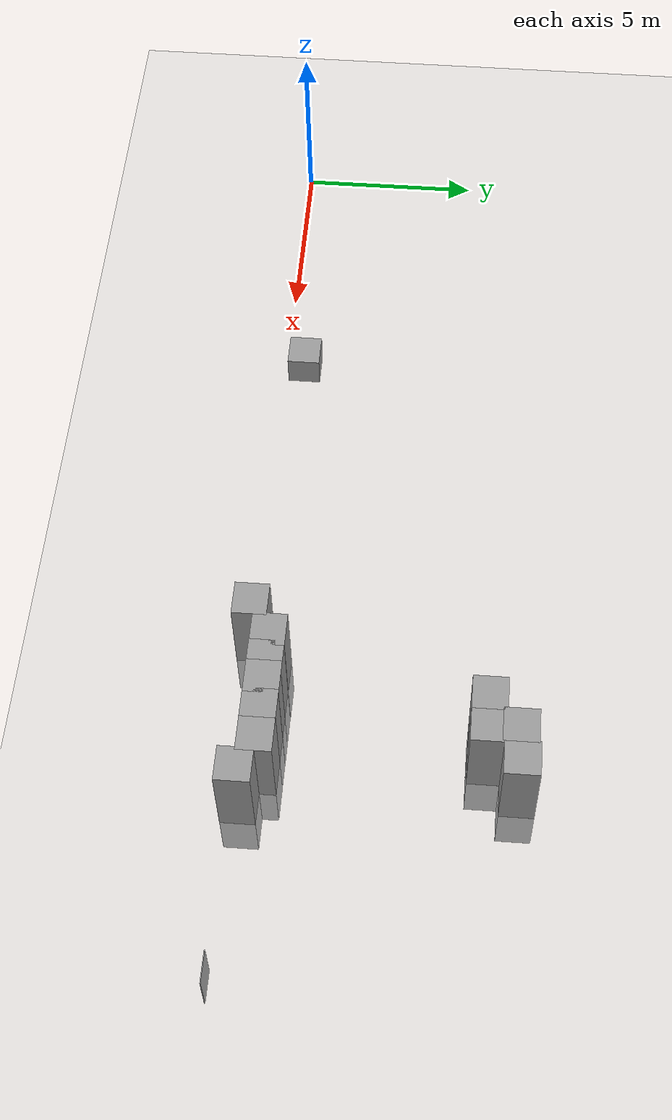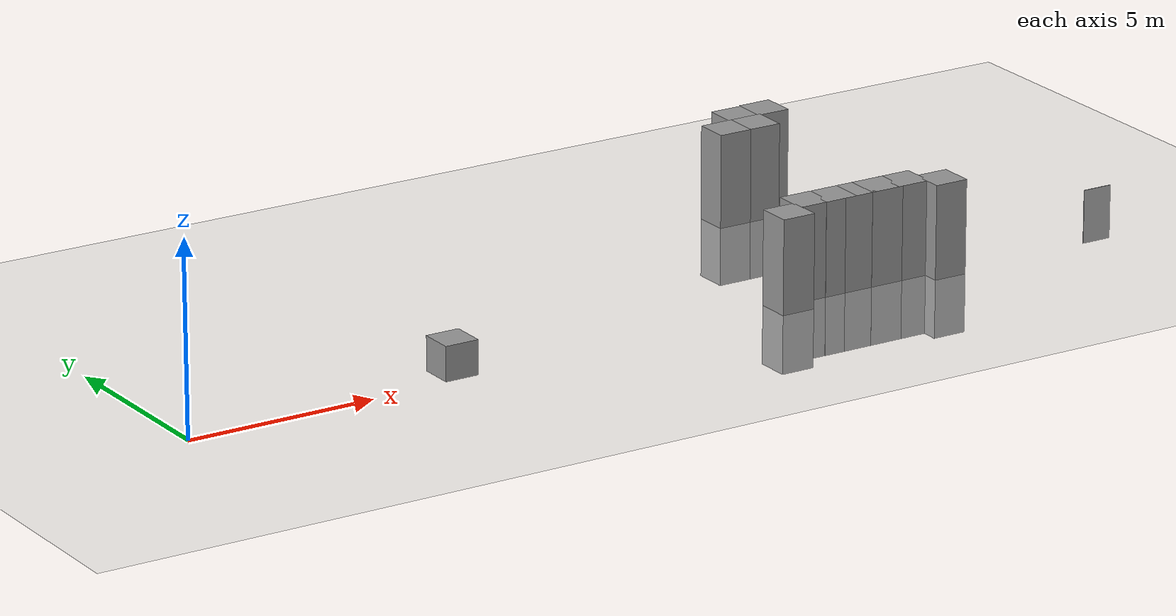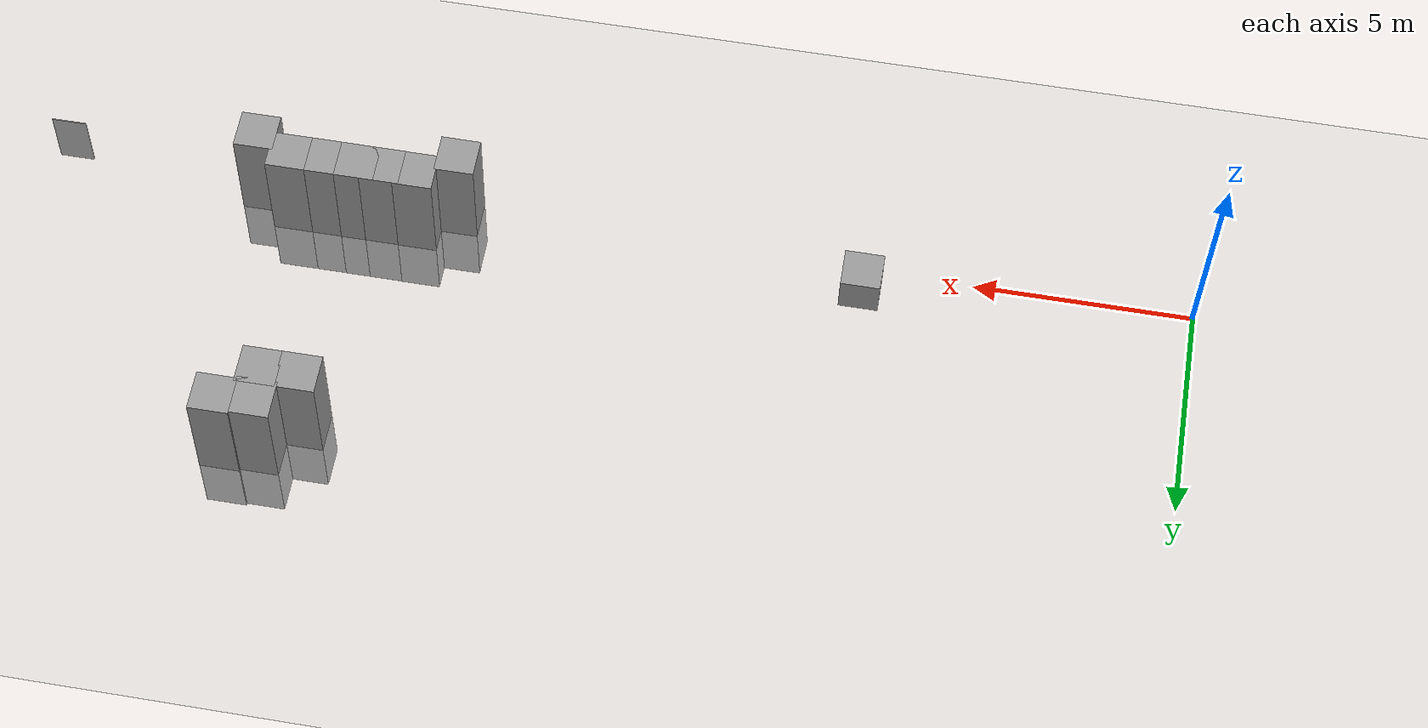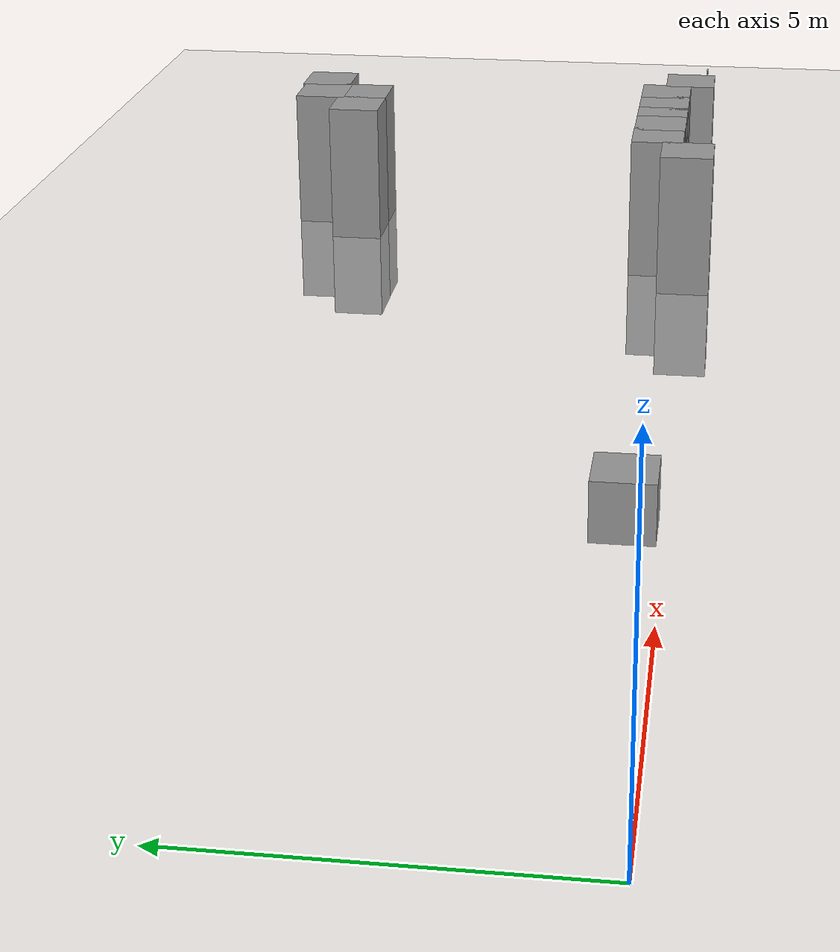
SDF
<sdf version="1.7">
 <world name="default">
  <model name="ground_plane">
   <static>1</static>
   <link name="link">
    <collision name="collision">
     <geometry><plane><normal>0 0 1</normal><size>100 100</size></plane></geometry>
     <surface><friction><ode><mu>100</mu><mu2>50</mu2></ode></friction></surface>
    </collision>
    <visual name="visual">
     <cast_shadows>0</cast_shadows>
     <geometry><plane><normal>0 0 1</normal><size>100 100</size></plane></geometry>
     <material>
      <script><uri>file://media/materials/scripts/gazebo.material</uri><name>Gazebo/Grey</name></script>
     </material>
    </visual>
   </link>
  </model>
  <model name="unit_box_1_clone_0_clone_clone">
   <link name="link">
    <inertial>
     <mass>1</mass>
     <inertia>
      <ixx>0.166667</ixx>
      <ixy>0</ixy>
      <ixz>0</ixz>
      <iyy>0.166667</iyy>
      <iyz>0</iyz>
      <izz>0.166667</izz>
     </inertia>
    </inertial>
    <visual name="visual">
     <geometry><box><size>0.02 0.8 1.4</size></box></geometry>
     <material>
      <script><name>Gazebo/LingXi</name><uri>file://media/materials/scripts/gazebo.material</uri></script>
      <shader type="pixel"><normal_map>__default__</normal_map></shader>
      <ambient>1 1 1 1</ambient>
      <diffuse>0.7 0.7 0.7 1</diffuse>
      <specular>0.01 0.01 0.01 1</specular>
      <emissive>0 0 0 1</emissive>
     </material>
     <pose>0 0 0 0 -0 1.5707</pose>
    </visual>
    <collision name="collision">
     <pose>0 0 0 0 -0 1.5707</pose>
     <geometry><box><size>0.02 0.8 1.4</size></box></geometry>
     <surface>
      <friction>
       <ode><mu>1</mu><mu2>1</mu2><fdir1>0 0 0</fdir1><slip1>0</slip1><slip2>0</slip2></ode>
       <torsional>
        <coefficient>1</coefficient>
        <patch_radius>0</patch_radius>
        <surface_radius>0</surface_radius>
        <use_patch_radius>1</use_patch_radius>
        <ode><slip>0</slip></ode>
       </torsional>
      </friction>
      <bounce><restitution_coefficient>0</restitution_coefficient><threshold>1e+06</threshold></bounce>
      <contact>
       <collide_without_contact>0</collide_without_contact>
       <collide_without_contact_bitmask>1</collide_without_contact_bitmask>
       <collide_bitmask>1</collide_bitmask>
       <ode>
        <soft_cfm>0</soft_cfm>
        <soft_erp>0.2</soft_erp>
        <kp>1e+13</kp>
        <kd>1</kd>
        <max_vel>0.01</max_vel>
        <min_depth>0</min_depth>
       </ode>
       <bullet>
        <split_impulse>1</split_impulse>
        <split_impulse_penetration_threshold>-0.01</split_impulse_penetration_threshold>
        <soft_cfm>0</soft_cfm>
        <soft_erp>0.2</soft_erp>
        <kp>1e+13</kp>
        <kd>1</kd>
       </bullet>
      </contact>
     </surface>
    </collision>
   </link>
   <static>0</static>
   <pose>26.036 -0.003555 0.700002 -0.000398 -4e-06 5.6e-05</pose>
  </model>
  <model name="unit_box">
   <link name="link_clone_0_clone_clone_3_clone_2_clone_23">
    <inertial>
     <mass>1</mass>
     <inertia>
      <ixx>0.166667</ixx>
      <ixy>0</ixy>
      <ixz>0</ixz>
      <iyy>0.166667</iyy>
      <iyz>0</iyz>
      <izz>0.166667</izz>
     </inertia>
    </inertial>
    <pose>13.9151 1.72247 0 0 -0 0</pose>
    <visual name="visual">
     <geometry><box><size>0.9 0.9 4</size></box></geometry>
     <material>
      <script><name>Gazebo/Grey</name><uri>file://media/materials/scripts/gazebo.material</uri></script>
      <shader type="pixel"><normal_map>__default__</normal_map></shader>
      <ambient>0.3 0.3 0.3 1</ambient>
      <diffuse>0.7 0.7 0.7 1</diffuse>
      <specular>0.01 0.01 0.01 1</specular>
      <emissive>0 0 0 1</emissive>
     </material>
    </visual>
    <collision name="collision">
     <geometry><box><size>0.9 0.9 4</size></box></geometry>
     <surface>
      <friction>
       <ode><mu>1</mu><mu2>1</mu2><fdir1>0 0 0</fdir1><slip1>0</slip1><slip2>0</slip2></ode>
       <torsional>
        <coefficient>1</coefficient>
        <patch_radius>0</patch_radius>
        <surface_radius>0</surface_radius>
        <use_patch_radius>1</use_patch_radius>
        <ode><slip>0</slip></ode>
       </torsional>
      </friction>
      <bounce><restitution_coefficient>0</restitution_coefficient><threshold>1e+06</threshold></bounce>
      <contact>
       <collide_without_contact>0</collide_without_contact>
       <collide_without_contact_bitmask>1</collide_without_contact_bitmask>
       <collide_bitmask>1</collide_bitmask>
       <ode>
        <soft_cfm>0</soft_cfm>
        <soft_erp>0.2</soft_erp>
        <kp>1e+13</kp>
        <kd>1</kd>
        <max_vel>0.01</max_vel>
        <min_depth>0</min_depth>
       </ode>
       <bullet>
        <split_impulse>1</split_impulse>
        <split_impulse_penetration_threshold>-0.01</split_impulse_penetration_threshold>
        <soft_cfm>0</soft_cfm>
        <soft_erp>0.2</soft_erp>
        <kp>1e+13</kp>
        <kd>1</kd>
       </bullet>
      </contact>
     </surface>
    </collision>
   </link>
   <link name="link_clone_0_clone_clone_3_clone_2_clone_24">
    <inertial>
     <mass>1</mass>
     <inertia>
      <ixx>0.166667</ixx>
      <ixy>0</ixy>
      <ixz>0</ixz>
      <iyy>0.166667</iyy>
      <iyz>0</iyz>
      <izz>0.166667</izz>
     </inertia>
    </inertial>
    <pose>13.0875 2.15167 0 0 -0 0</pose>
    <visual name="visual">
     <geometry><box><size>0.9 0.9 4</size></box></geometry>
     <material>
      <script><name>Gazebo/Grey</name><uri>file://media/materials/scripts/gazebo.material</uri></script>
      <shader type="pixel"><normal_map>__default__</normal_map></shader>
      <ambient>0.3 0.3 0.3 1</ambient>
      <diffuse>0.7 0.7 0.7 1</diffuse>
      <specular>0.01 0.01 0.01 1</specular>
      <emissive>0 0 0 1</emissive>
     </material>
    </visual>
    <collision name="collision">
     <geometry><box><size>0.9 0.9 4</size></box></geometry>
     <surface>
      <friction>
       <ode><mu>1</mu><mu2>1</mu2><fdir1>0 0 0</fdir1><slip1>0</slip1><slip2>0</slip2></ode>
       <torsional>
        <coefficient>1</coefficient>
        <patch_radius>0</patch_radius>
        <surface_radius>0</surface_radius>
        <use_patch_radius>1</use_patch_radius>
        <ode><slip>0</slip></ode>
       </torsional>
      </friction>
      <bounce><restitution_coefficient>0</restitution_coefficient><threshold>1e+06</threshold></bounce>
      <contact>
       <collide_without_contact>0</collide_without_contact>
       <collide_without_contact_bitmask>1</collide_without_contact_bitmask>
       <collide_bitmask>1</collide_bitmask>
       <ode>
        <soft_cfm>0</soft_cfm>
        <soft_erp>0.2</soft_erp>
        <kp>1e+13</kp>
        <kd>1</kd>
        <max_vel>0.01</max_vel>
        <min_depth>0</min_depth>
       </ode>
       <bullet>
        <split_impulse>1</split_impulse>
        <split_impulse_penetration_threshold>-0.01</split_impulse_penetration_threshold>
        <soft_cfm>0</soft_cfm>
        <soft_erp>0.2</soft_erp>
        <kp>1e+13</kp>
        <kd>1</kd>
       </bullet>
      </contact>
     </surface>
    </collision>
   </link>
   <link name="link_clone_0_clone_clone_3_clone_2_clone_25">
    <inertial>
     <mass>1</mass>
     <inertia>
      <ixx>0.166667</ixx>
      <ixy>0</ixy>
      <ixz>0</ixz>
      <iyy>0.166667</iyy>
      <iyz>0</iyz>
      <izz>0.166667</izz>
     </inertia>
    </inertial>
    <pose>12.303 2.15067 0 0 -0 0</pose>
    <visual name="visual">
     <geometry><box><size>0.9 0.9 4</size></box></geometry>
     <material>
      <script><name>Gazebo/Grey</name><uri>file://media/materials/scripts/gazebo.material</uri></script>
      <shader type="pixel"><normal_map>__default__</normal_map></shader>
      <ambient>0.3 0.3 0.3 1</ambient>
      <diffuse>0.7 0.7 0.7 1</diffuse>
      <specular>0.01 0.01 0.01 1</specular>
      <emissive>0 0 0 1</emissive>
     </material>
    </visual>
    <collision name="collision">
     <geometry><box><size>0.9 0.9 4</size></box></geometry>
     <surface>
      <friction>
       <ode><mu>1</mu><mu2>1</mu2><fdir1>0 0 0</fdir1><slip1>0</slip1><slip2>0</slip2></ode>
       <torsional>
        <coefficient>1</coefficient>
        <patch_radius>0</patch_radius>
        <surface_radius>0</surface_radius>
        <use_patch_radius>1</use_patch_radius>
        <ode><slip>0</slip></ode>
       </torsional>
      </friction>
      <bounce><restitution_coefficient>0</restitution_coefficient><threshold>1e+06</threshold></bounce>
      <contact>
       <collide_without_contact>0</collide_without_contact>
       <collide_without_contact_bitmask>1</collide_without_contact_bitmask>
       <collide_bitmask>1</collide_bitmask>
       <ode>
        <soft_cfm>0</soft_cfm>
        <soft_erp>0.2</soft_erp>
        <kp>1e+13</kp>
        <kd>1</kd>
        <max_vel>0.01</max_vel>
        <min_depth>0</min_depth>
       </ode>
       <bullet>
        <split_impulse>1</split_impulse>
        <split_impulse_penetration_threshold>-0.01</split_impulse_penetration_threshold>
        <soft_cfm>0</soft_cfm>
        <soft_erp>0.2</soft_erp>
        <kp>1e+13</kp>
        <kd>1</kd>
       </bullet>
      </contact>
     </surface>
    </collision>
   </link>
   <link name="link_clone_0_clone_clone_3_clone_2_clone_26">
    <inertial>
     <mass>1</mass>
     <inertia>
      <ixx>0.166667</ixx>
      <ixy>0</ixy>
      <ixz>0</ixz>
      <iyy>0.166667</iyy>
      <iyz>0</iyz>
      <izz>0.166667</izz>
     </inertia>
    </inertial>
    <pose>11.5113 2.15271 0 0 -0 0</pose>
    <visual name="visual">
     <geometry><box><size>0.9 0.9 4</size></box></geometry>
     <material>
      <script><name>Gazebo/Grey</name><uri>file://media/materials/scripts/gazebo.material</uri></script>
      <shader type="pixel"><normal_map>__default__</normal_map></shader>
      <ambient>0.3 0.3 0.3 1</ambient>
      <diffuse>0.7 0.7 0.7 1</diffuse>
      <specular>0.01 0.01 0.01 1</specular>
      <emissive>0 0 0 1</emissive>
     </material>
    </visual>
    <collision name="collision">
     <geometry><box><size>0.9 0.9 4</size></box></geometry>
     <surface>
      <friction>
       <ode><mu>1</mu><mu2>1</mu2><fdir1>0 0 0</fdir1><slip1>0</slip1><slip2>0</slip2></ode>
       <torsional>
        <coefficient>1</coefficient>
        <patch_radius>0</patch_radius>
        <surface_radius>0</surface_radius>
        <use_patch_radius>1</use_patch_radius>
        <ode><slip>0</slip></ode>
       </torsional>
      </friction>
      <bounce><restitution_coefficient>0</restitution_coefficient><threshold>1e+06</threshold></bounce>
      <contact>
       <collide_without_contact>0</collide_without_contact>
       <collide_without_contact_bitmask>1</collide_without_contact_bitmask>
       <collide_bitmask>1</collide_bitmask>
       <ode>
        <soft_cfm>0</soft_cfm>
        <soft_erp>0.2</soft_erp>
        <kp>1e+13</kp>
        <kd>1</kd>
        <max_vel>0.01</max_vel>
        <min_depth>0</min_depth>
       </ode>
       <bullet>
        <split_impulse>1</split_impulse>
        <split_impulse_penetration_threshold>-0.01</split_impulse_penetration_threshold>
        <soft_cfm>0</soft_cfm>
        <soft_erp>0.2</soft_erp>
        <kp>1e+13</kp>
        <kd>1</kd>
       </bullet>
      </contact>
     </surface>
    </collision>
   </link>
   <link name="link_clone_0_clone_clone_3_clone_2_clone_27">
    <inertial>
     <mass>1</mass>
     <inertia>
      <ixx>0.166667</ixx>
      <ixy>0</ixy>
      <ixz>0</ixz>
      <iyy>0.166667</iyy>
      <iyz>0</iyz>
      <izz>0.166667</izz>
     </inertia>
    </inertial>
    <pose>10.9377 2.1528 0 0 -0 0</pose>
    <visual name="visual">
     <geometry><box><size>0.9 0.9 4</size></box></geometry>
     <material>
      <script><name>Gazebo/Grey</name><uri>file://media/materials/scripts/gazebo.material</uri></script>
      <shader type="pixel"><normal_map>__default__</normal_map></shader>
      <ambient>0.3 0.3 0.3 1</ambient>
      <diffuse>0.7 0.7 0.7 1</diffuse>
      <specular>0.01 0.01 0.01 1</specular>
      <emissive>0 0 0 1</emissive>
     </material>
    </visual>
    <collision name="collision">
     <geometry><box><size>0.9 0.9 4</size></box></geometry>
     <surface>
      <friction>
       <ode><mu>1</mu><mu2>1</mu2><fdir1>0 0 0</fdir1><slip1>0</slip1><slip2>0</slip2></ode>
       <torsional>
        <coefficient>1</coefficient>
        <patch_radius>0</patch_radius>
        <surface_radius>0</surface_radius>
        <use_patch_radius>1</use_patch_radius>
        <ode><slip>0</slip></ode>
       </torsional>
      </friction>
      <bounce><restitution_coefficient>0</restitution_coefficient><threshold>1e+06</threshold></bounce>
      <contact>
       <collide_without_contact>0</collide_without_contact>
       <collide_without_contact_bitmask>1</collide_without_contact_bitmask>
       <collide_bitmask>1</collide_bitmask>
       <ode>
        <soft_cfm>0</soft_cfm>
        <soft_erp>0.2</soft_erp>
        <kp>1e+13</kp>
        <kd>1</kd>
        <max_vel>0.01</max_vel>
        <min_depth>0</min_depth>
       </ode>
       <bullet>
        <split_impulse>1</split_impulse>
        <split_impulse_penetration_threshold>-0.01</split_impulse_penetration_threshold>
        <soft_cfm>0</soft_cfm>
        <soft_erp>0.2</soft_erp>
        <kp>1e+13</kp>
        <kd>1</kd>
       </bullet>
      </contact>
     </surface>
    </collision>
   </link>
   <link name="link_clone_0_clone_clone_3_clone_2_clone_28">
    <inertial>
     <mass>1</mass>
     <inertia>
      <ixx>0.166667</ixx>
      <ixy>0</ixy>
      <ixz>0</ixz>
      <iyy>0.166667</iyy>
      <iyz>0</iyz>
      <izz>0.166667</izz>
     </inertia>
    </inertial>
    <pose>10.1752 2.15883 0 0 -0 0</pose>
    <visual name="visual">
     <geometry><box><size>0.9 0.9 4</size></box></geometry>
     <material>
      <script><name>Gazebo/Grey</name><uri>file://media/materials/scripts/gazebo.material</uri></script>
      <shader type="pixel"><normal_map>__default__</normal_map></shader>
      <ambient>0.3 0.3 0.3 1</ambient>
      <diffuse>0.7 0.7 0.7 1</diffuse>
      <specular>0.01 0.01 0.01 1</specular>
      <emissive>0 0 0 1</emissive>
     </material>
    </visual>
    <collision name="collision">
     <geometry><box><size>0.9 0.9 4</size></box></geometry>
     <surface>
      <friction>
       <ode><mu>1</mu><mu2>1</mu2><fdir1>0 0 0</fdir1><slip1>0</slip1><slip2>0</slip2></ode>
       <torsional>
        <coefficient>1</coefficient>
        <patch_radius>0</patch_radius>
        <surface_radius>0</surface_radius>
        <use_patch_radius>1</use_patch_radius>
        <ode><slip>0</slip></ode>
       </torsional>
      </friction>
      <bounce><restitution_coefficient>0</restitution_coefficient><threshold>1e+06</threshold></bounce>
      <contact>
       <collide_without_contact>0</collide_without_contact>
       <collide_without_contact_bitmask>1</collide_without_contact_bitmask>
       <collide_bitmask>1</collide_bitmask>
       <ode>
        <soft_cfm>0</soft_cfm>
        <soft_erp>0.2</soft_erp>
        <kp>1e+13</kp>
        <kd>1</kd>
        <max_vel>0.01</max_vel>
        <min_depth>0</min_depth>
       </ode>
       <bullet>
        <split_impulse>1</split_impulse>
        <split_impulse_penetration_threshold>-0.01</split_impulse_penetration_threshold>
        <soft_cfm>0</soft_cfm>
        <soft_erp>0.2</soft_erp>
        <kp>1e+13</kp>
        <kd>1</kd>
       </bullet>
      </contact>
     </surface>
    </collision>
   </link>
   <link name="link_clone_0_clone_clone_3_clone_2_clone_29">
    <inertial>
     <mass>1</mass>
     <inertia>
      <ixx>0.166667</ixx>
      <ixy>0</ixy>
      <ixz>0</ixz>
      <iyy>0.166667</iyy>
      <iyz>0</iyz>
      <izz>0.166667</izz>
     </inertia>
    </inertial>
    <pose>9.32821 1.61569 0 0 -0 0</pose>
    <visual name="visual">
     <geometry><box><size>0.9 0.9 4</size></box></geometry>
     <material>
      <script><name>Gazebo/Grey</name><uri>file://media/materials/scripts/gazebo.material</uri></script>
      <shader type="pixel"><normal_map>__default__</normal_map></shader>
      <ambient>0.3 0.3 0.3 1</ambient>
      <diffuse>0.7 0.7 0.7 1</diffuse>
      <specular>0.01 0.01 0.01 1</specular>
      <emissive>0 0 0 1</emissive>
     </material>
    </visual>
    <collision name="collision">
     <geometry><box><size>0.9 0.9 4</size></box></geometry>
     <surface>
      <friction>
       <ode><mu>1</mu><mu2>1</mu2><fdir1>0 0 0</fdir1><slip1>0</slip1><slip2>0</slip2></ode>
       <torsional>
        <coefficient>1</coefficient>
        <patch_radius>0</patch_radius>
        <surface_radius>0</surface_radius>
        <use_patch_radius>1</use_patch_radius>
        <ode><slip>0</slip></ode>
       </torsional>
      </friction>
      <bounce><restitution_coefficient>0</restitution_coefficient><threshold>1e+06</threshold></bounce>
      <contact>
       <collide_without_contact>0</collide_without_contact>
       <collide_without_contact_bitmask>1</collide_without_contact_bitmask>
       <collide_bitmask>1</collide_bitmask>
       <ode>
        <soft_cfm>0</soft_cfm>
        <soft_erp>0.2</soft_erp>
        <kp>1e+13</kp>
        <kd>1</kd>
        <max_vel>0.01</max_vel>
        <min_depth>0</min_depth>
       </ode>
       <bullet>
        <split_impulse>1</split_impulse>
        <split_impulse_penetration_threshold>-0.01</split_impulse_penetration_threshold>
        <soft_cfm>0</soft_cfm>
        <soft_erp>0.2</soft_erp>
        <kp>1e+13</kp>
        <kd>1</kd>
       </bullet>
      </contact>
     </surface>
    </collision>
   </link>
   <link name="link_clone_0_clone_clone_3_clone_2_clone_33">
    <inertial>
     <mass>1</mass>
     <inertia>
      <ixx>0.166667</ixx>
      <ixy>0</ixy>
      <ixz>0</ixz>
      <iyy>0.166667</iyy>
      <iyz>0</iyz>
      <izz>0.166667</izz>
     </inertia>
    </inertial>
    <pose>11.5534 7.77866 0 0 -0 0</pose>
    <visual name="visual">
     <geometry><box><size>0.9 0.9 4</size></box></geometry>
     <material>
      <script><name>Gazebo/Grey</name><uri>file://media/materials/scripts/gazebo.material</uri></script>
      <shader type="pixel"><normal_map>__default__</normal_map></shader>
      <ambient>0.3 0.3 0.3 1</ambient>
      <diffuse>0.7 0.7 0.7 1</diffuse>
      <specular>0.01 0.01 0.01 1</specular>
      <emissive>0 0 0 1</emissive>
     </material>
    </visual>
    <collision name="collision">
     <geometry><box><size>0.9 0.9 4</size></box></geometry>
     <surface>
      <friction>
       <ode><mu>1</mu><mu2>1</mu2><fdir1>0 0 0</fdir1><slip1>0</slip1><slip2>0</slip2></ode>
       <torsional>
        <coefficient>1</coefficient>
        <patch_radius>0</patch_radius>
        <surface_radius>0</surface_radius>
        <use_patch_radius>1</use_patch_radius>
        <ode><slip>0</slip></ode>
       </torsional>
      </friction>
      <bounce><restitution_coefficient>0</restitution_coefficient><threshold>1e+06</threshold></bounce>
      <contact>
       <collide_without_contact>0</collide_without_contact>
       <collide_without_contact_bitmask>1</collide_without_contact_bitmask>
       <collide_bitmask>1</collide_bitmask>
       <ode>
        <soft_cfm>0</soft_cfm>
        <soft_erp>0.2</soft_erp>
        <kp>1e+13</kp>
        <kd>1</kd>
        <max_vel>0.01</max_vel>
        <min_depth>0</min_depth>
       </ode>
       <bullet>
        <split_impulse>1</split_impulse>
        <split_impulse_penetration_threshold>-0.01</split_impulse_penetration_threshold>
        <soft_cfm>0</soft_cfm>
        <soft_erp>0.2</soft_erp>
        <kp>1e+13</kp>
        <kd>1</kd>
       </bullet>
      </contact>
     </surface>
    </collision>
   </link>
   <link name="link_clone_0_clone_clone_3_clone_2_clone_34">
    <inertial>
     <mass>1</mass>
     <inertia>
      <ixx>0.166667</ixx>
      <ixy>0</ixy>
      <ixz>0</ixz>
      <iyy>0.166667</iyy>
      <iyz>0</iyz>
      <izz>0.166667</izz>
     </inertia>
    </inertial>
    <pose>12.4188 7.78202 0 0 -0 0</pose>
    <visual name="visual">
     <geometry><box><size>0.9 0.9 4</size></box></geometry>
     <material>
      <script><name>Gazebo/Grey</name><uri>file://media/materials/scripts/gazebo.material</uri></script>
      <shader type="pixel"><normal_map>__default__</normal_map></shader>
      <ambient>0.3 0.3 0.3 1</ambient>
      <diffuse>0.7 0.7 0.7 1</diffuse>
      <specular>0.01 0.01 0.01 1</specular>
      <emissive>0 0 0 1</emissive>
     </material>
    </visual>
    <collision name="collision">
     <geometry><box><size>0.9 0.9 4</size></box></geometry>
     <surface>
      <friction>
       <ode><mu>1</mu><mu2>1</mu2><fdir1>0 0 0</fdir1><slip1>0</slip1><slip2>0</slip2></ode>
       <torsional>
        <coefficient>1</coefficient>
        <patch_radius>0</patch_radius>
        <surface_radius>0</surface_radius>
        <use_patch_radius>1</use_patch_radius>
        <ode><slip>0</slip></ode>
       </torsional>
      </friction>
      <bounce><restitution_coefficient>0</restitution_coefficient><threshold>1e+06</threshold></bounce>
      <contact>
       <collide_without_contact>0</collide_without_contact>
       <collide_without_contact_bitmask>1</collide_without_contact_bitmask>
       <collide_bitmask>1</collide_bitmask>
       <ode>
        <soft_cfm>0</soft_cfm>
        <soft_erp>0.2</soft_erp>
        <kp>1e+13</kp>
        <kd>1</kd>
        <max_vel>0.01</max_vel>
        <min_depth>0</min_depth>
       </ode>
       <bullet>
        <split_impulse>1</split_impulse>
        <split_impulse_penetration_threshold>-0.01</split_impulse_penetration_threshold>
        <soft_cfm>0</soft_cfm>
        <soft_erp>0.2</soft_erp>
        <kp>1e+13</kp>
        <kd>1</kd>
       </bullet>
      </contact>
     </surface>
    </collision>
   </link>
   <link name="link_clone_0_clone_clone_3_clone_2_clone_36">
    <inertial>
     <mass>1</mass>
     <inertia>
      <ixx>0.166667</ixx>
      <ixy>0</ixy>
      <ixz>0</ixz>
      <iyy>0.166667</iyy>
      <iyz>0</iyz>
      <izz>0.166667</izz>
     </inertia>
    </inertial>
    <pose>13.2399 8.61339 0 0 -0 0</pose>
    <visual name="visual">
     <geometry><box><size>0.9 0.9 4</size></box></geometry>
     <material>
      <script><name>Gazebo/Grey</name><uri>file://media/materials/scripts/gazebo.material</uri></script>
      <shader type="pixel"><normal_map>__default__</normal_map></shader>
      <ambient>0.3 0.3 0.3 1</ambient>
      <diffuse>0.7 0.7 0.7 1</diffuse>
      <specular>0.01 0.01 0.01 1</specular>
      <emissive>0 0 0 1</emissive>
     </material>
    </visual>
    <collision name="collision">
     <geometry><box><size>0.9 0.9 4</size></box></geometry>
     <surface>
      <friction>
       <ode><mu>1</mu><mu2>1</mu2><fdir1>0 0 0</fdir1><slip1>0</slip1><slip2>0</slip2></ode>
       <torsional>
        <coefficient>1</coefficient>
        <patch_radius>0</patch_radius>
        <surface_radius>0</surface_radius>
        <use_patch_radius>1</use_patch_radius>
        <ode><slip>0</slip></ode>
       </torsional>
      </friction>
      <bounce><restitution_coefficient>0</restitution_coefficient><threshold>1e+06</threshold></bounce>
      <contact>
       <collide_without_contact>0</collide_without_contact>
       <collide_without_contact_bitmask>1</collide_without_contact_bitmask>
       <collide_bitmask>1</collide_bitmask>
       <ode>
        <soft_cfm>0</soft_cfm>
        <soft_erp>0.2</soft_erp>
        <kp>1e+13</kp>
        <kd>1</kd>
        <max_vel>0.01</max_vel>
        <min_depth>0</min_depth>
       </ode>
       <bullet>
        <split_impulse>1</split_impulse>
        <split_impulse_penetration_threshold>-0.01</split_impulse_penetration_threshold>
        <soft_cfm>0</soft_cfm>
        <soft_erp>0.2</soft_erp>
        <kp>1e+13</kp>
        <kd>1</kd>
       </bullet>
      </contact>
     </surface>
    </collision>
   </link>
   <link name="link_clone_0_clone_clone_3_clone_2_clone_38">
    <inertial>
     <mass>1</mass>
     <inertia>
      <ixx>0.166667</ixx>
      <ixy>0</ixy>
      <ixz>0</ixz>
      <iyy>0.166667</iyy>
      <iyz>0</iyz>
      <izz>0.166667</izz>
     </inertia>
    </inertial>
    <pose>12.3724 8.56503 0 0 -0 0</pose>
    <visual name="visual">
     <geometry><box><size>0.9 0.9 4</size></box></geometry>
     <material>
      <script><name>Gazebo/Grey</name><uri>file://media/materials/scripts/gazebo.material</uri></script>
      <shader type="pixel"><normal_map>__default__</normal_map></shader>
      <ambient>0.3 0.3 0.3 1</ambient>
      <diffuse>0.7 0.7 0.7 1</diffuse>
      <specular>0.01 0.01 0.01 1</specular>
      <emissive>0 0 0 1</emissive>
     </material>
    </visual>
    <collision name="collision">
     <geometry><box><size>0.9 0.9 4</size></box></geometry>
     <surface>
      <friction>
       <ode><mu>1</mu><mu2>1</mu2><fdir1>0 0 0</fdir1><slip1>0</slip1><slip2>0</slip2></ode>
       <torsional>
        <coefficient>1</coefficient>
        <patch_radius>0</patch_radius>
        <surface_radius>0</surface_radius>
        <use_patch_radius>1</use_patch_radius>
        <ode><slip>0</slip></ode>
       </torsional>
      </friction>
      <bounce><restitution_coefficient>0</restitution_coefficient><threshold>1e+06</threshold></bounce>
      <contact>
       <collide_without_contact>0</collide_without_contact>
       <collide_without_contact_bitmask>1</collide_without_contact_bitmask>
       <collide_bitmask>1</collide_bitmask>
       <ode>
        <soft_cfm>0</soft_cfm>
        <soft_erp>0.2</soft_erp>
        <kp>1e+13</kp>
        <kd>1</kd>
        <max_vel>0.01</max_vel>
        <min_depth>0</min_depth>
       </ode>
       <bullet>
        <split_impulse>1</split_impulse>
        <split_impulse_penetration_threshold>-0.01</split_impulse_penetration_threshold>
        <soft_cfm>0</soft_cfm>
        <soft_erp>0.2</soft_erp>
        <kp>1e+13</kp>
        <kd>1</kd>
       </bullet>
      </contact>
     </surface>
    </collision>
   </link>
   <link name="link_clone_clone">
    <inertial>
     <mass>1</mass>
     <inertia>
      <ixx>0.166667</ixx>
      <ixy>0</ixy>
      <ixz>0</ixz>
      <iyy>0.166667</iyy>
      <iyz>0</iyz>
      <izz>0.166667</izz>
     </inertia>
    </inertial>
    <pose>-0.004595 2.04241 0 0 -0 0</pose>
    <visual name="visual">
     <geometry><box><size>0.9 0.9 0.9</size></box></geometry>
     <material>
      <script><name>Gazebo/Grey</name><uri>file://media/materials/scripts/gazebo.material</uri></script>
      <shader type="pixel"><normal_map>__default__</normal_map></shader>
      <ambient>0.3 0.3 0.3 1</ambient>
      <diffuse>0.7 0.7 0.7 1</diffuse>
      <specular>0.01 0.01 0.01 1</specular>
      <emissive>0 0 0 1</emissive>
     </material>
    </visual>
    <collision name="collision">
     <geometry><box><size>0.9 0.9 0.9</size></box></geometry>
     <surface>
      <friction>
       <ode><mu>1</mu><mu2>1</mu2><fdir1>0 0 0</fdir1><slip1>0</slip1><slip2>0</slip2></ode>
       <torsional>
        <coefficient>1</coefficient>
        <patch_radius>0</patch_radius>
        <surface_radius>0</surface_radius>
        <use_patch_radius>1</use_patch_radius>
        <ode><slip>0</slip></ode>
       </torsional>
      </friction>
      <bounce><restitution_coefficient>0</restitution_coefficient><threshold>1e+06</threshold></bounce>
      <contact>
       <collide_without_contact>0</collide_without_contact>
       <collide_without_contact_bitmask>1</collide_without_contact_bitmask>
       <collide_bitmask>1</collide_bitmask>
       <ode>
        <soft_cfm>0</soft_cfm>
        <soft_erp>0.2</soft_erp>
        <kp>1e+13</kp>
        <kd>1</kd>
        <max_vel>0.01</max_vel>
        <min_depth>0</min_depth>
       </ode>
       <bullet>
        <split_impulse>1</split_impulse>
        <split_impulse_penetration_threshold>-0.01</split_impulse_penetration_threshold>
        <soft_cfm>0</soft_cfm>
        <soft_erp>0.2</soft_erp>
        <kp>1e+13</kp>
        <kd>1</kd>
       </bullet>
      </contact>
     </surface>
    </collision>
   </link>
   <static>0</static>
   <pose>7.51627 -1.49726 0.45 0 -0 0</pose>
  </model>
 </world>
</sdf>
